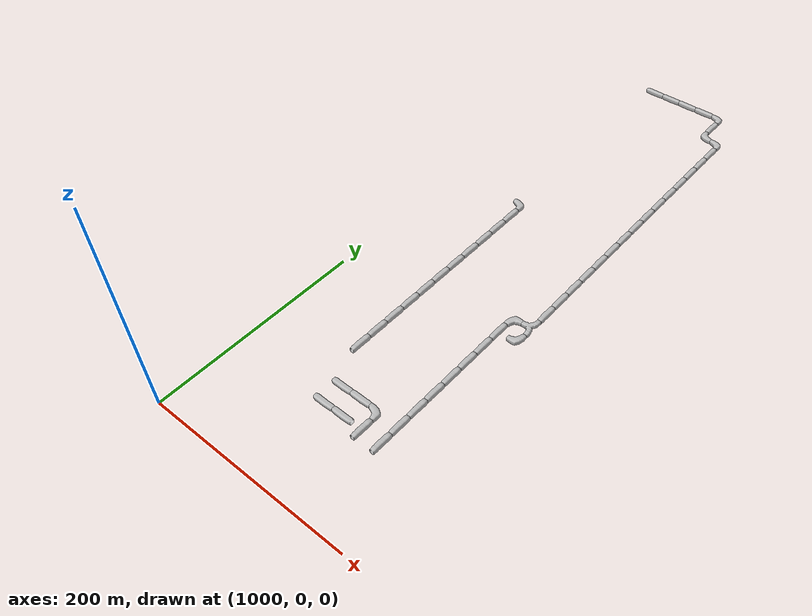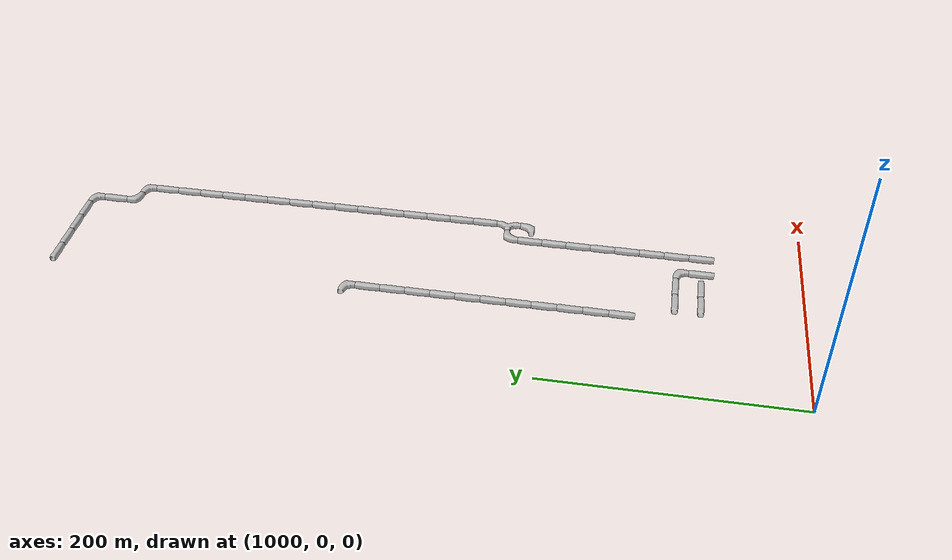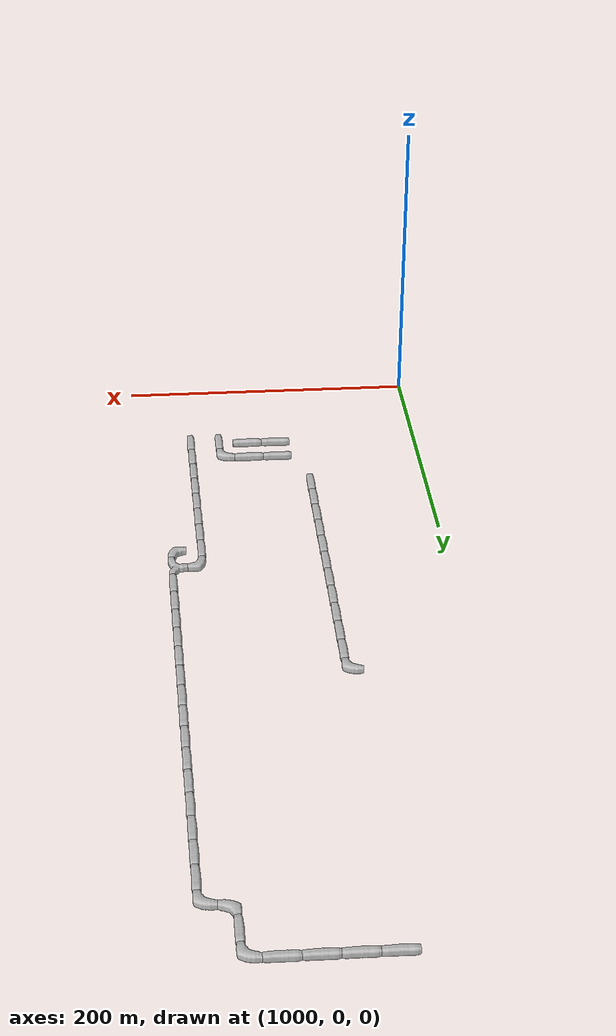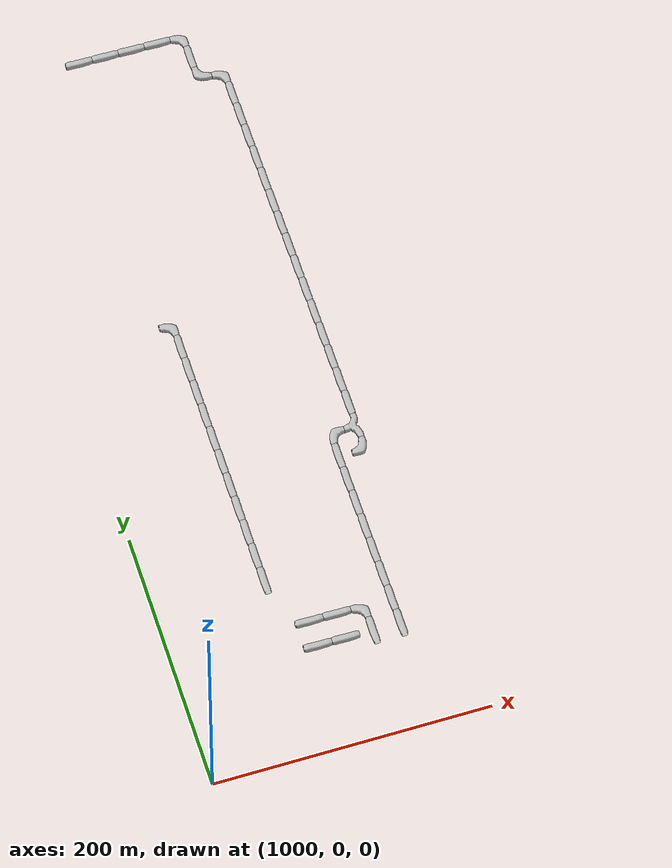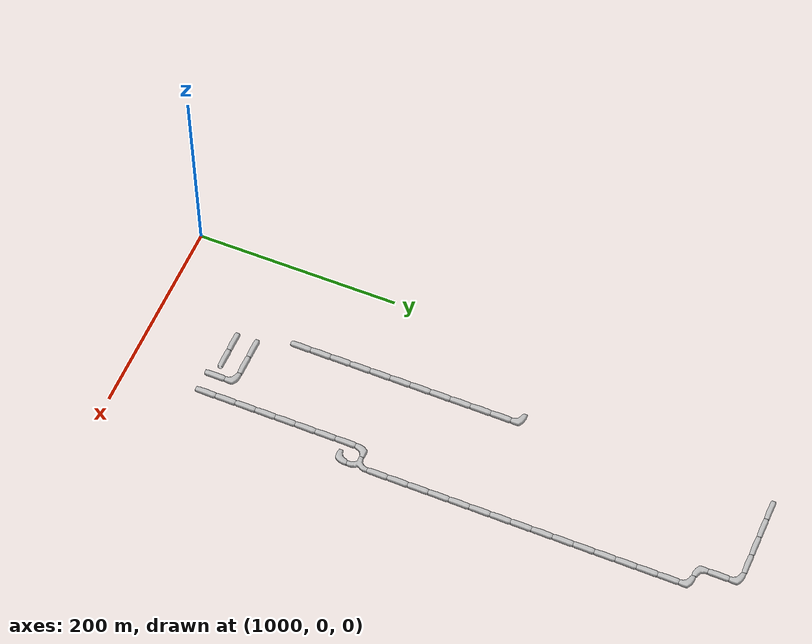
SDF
<sdf version="1.6">
 <world name="cave_16000_8">
  <include>
   <static>true</static>
   <name>cave_55_5</name>
   <pose>1100 100 0 0 0 1.5707963267948966</pose>
   <uri>model://cave_straight_20m</uri>
  </include>
  <include>
   <static>true</static>
   <name>cave_56_5</name>
   <pose>1120 100 0 0 0 1.5707963267948966</pose>
   <uri>model://cave_straight_20m</uri>
  </include>
  <include>
   <static>true</static>
   <name>cave_57_5</name>
   <pose>1140 100 0 0 0 3.141592653589793</pose>
   <uri>model://cave_L_20m</uri>
  </include>
  <include>
   <static>true</static>
   <name>cave_57_4</name>
   <pose>1140 80 0 0 0 0.0</pose>
   <uri>model://cave_straight_20m</uri>
  </include>
  <include>
   <static>true</static>
   <name>cave_58_4</name>
   <pose>1160 80 0 0 0 0.0</pose>
   <uri>model://cave_straight_20m</uri>
  </include>
  <include>
   <static>true</static>
   <name>cave_58_5</name>
   <pose>1160 100 0 0 0 0.0</pose>
   <uri>model://cave_straight_20m</uri>
  </include>
  <include>
   <static>true</static>
   <name>cave_58_6</name>
   <pose>1160 120 0 0 0 0.0</pose>
   <uri>model://cave_straight_20m</uri>
  </include>
  <include>
   <static>true</static>
   <name>cave_58_7</name>
   <pose>1160 140 0 0 0 0.0</pose>
   <uri>model://cave_straight_20m</uri>
  </include>
  <include>
   <static>true</static>
   <name>cave_58_8</name>
   <pose>1160 160 0 0 0 0.0</pose>
   <uri>model://cave_straight_20m</uri>
  </include>
  <include>
   <static>true</static>
   <name>cave_58_9</name>
   <pose>1160 180 0 0 0 0.0</pose>
   <uri>model://cave_straight_20m</uri>
  </include>
  <include>
   <static>true</static>
   <name>cave_58_10</name>
   <pose>1160 200 0 0 0 0.0</pose>
   <uri>model://cave_straight_20m</uri>
  </include>
  <include>
   <static>true</static>
   <name>cave_58_11</name>
   <pose>1160 220 0 0 0 0.0</pose>
   <uri>model://cave_straight_20m</uri>
  </include>
  <include>
   <static>true</static>
   <name>cave_58_12</name>
   <pose>1160 240 0 0 0 -1.5707963267948966</pose>
   <uri>model://cave_L_20m</uri>
  </include>
  <include>
   <static>true</static>
   <name>cave_59_12</name>
   <pose>1180 240 0 0 0 1.5707963267948966</pose>
   <uri>model://cave_3way_20m</uri>
  </include>
  <include>
   <static>true</static>
   <name>cave_59_11</name>
   <pose>1180 220 0 0 0 1.5707963267948966</pose>
   <uri>model://cave_L_20m</uri>
  </include>
  <include>
   <static>true</static>
   <name>cave_59_13</name>
   <pose>1180 260 0 0 0 0.0</pose>
   <uri>model://cave_straight_20m</uri>
  </include>
  <include>
   <static>true</static>
   <name>cave_59_14</name>
   <pose>1180 280 0 0 0 0.0</pose>
   <uri>model://cave_straight_20m</uri>
  </include>
  <include>
   <static>true</static>
   <name>cave_59_15</name>
   <pose>1180 300 0 0 0 0.0</pose>
   <uri>model://cave_straight_20m</uri>
  </include>
  <include>
   <static>true</static>
   <name>cave_59_16</name>
   <pose>1180 320 0 0 0 0.0</pose>
   <uri>model://cave_straight_20m</uri>
  </include>
  <include>
   <static>true</static>
   <name>cave_59_17</name>
   <pose>1180 340 0 0 0 0.0</pose>
   <uri>model://cave_straight_20m</uri>
  </include>
  <include>
   <static>true</static>
   <name>cave_59_18</name>
   <pose>1180 360 0 0 0 0.0</pose>
   <uri>model://cave_straight_20m</uri>
  </include>
  <include>
   <static>true</static>
   <name>cave_59_19</name>
   <pose>1180 380 0 0 0 0.0</pose>
   <uri>model://cave_straight_20m</uri>
  </include>
  <include>
   <static>true</static>
   <name>cave_59_20</name>
   <pose>1180 400 0 0 0 0.0</pose>
   <uri>model://cave_straight_20m</uri>
  </include>
  <include>
   <static>true</static>
   <name>cave_59_21</name>
   <pose>1180 420 0 0 0 0.0</pose>
   <uri>model://cave_straight_20m</uri>
  </include>
  <include>
   <static>true</static>
   <name>cave_59_22</name>
   <pose>1180 440 0 0 0 0.0</pose>
   <uri>model://cave_straight_20m</uri>
  </include>
  <include>
   <static>true</static>
   <name>cave_59_23</name>
   <pose>1180 460 0 0 0 0.0</pose>
   <uri>model://cave_straight_20m</uri>
  </include>
  <include>
   <static>true</static>
   <name>cave_59_24</name>
   <pose>1180 480 0 0 0 0.0</pose>
   <uri>model://cave_straight_20m</uri>
  </include>
  <include>
   <static>true</static>
   <name>cave_59_25</name>
   <pose>1180 500 0 0 0 0.0</pose>
   <uri>model://cave_straight_20m</uri>
  </include>
  <include>
   <static>true</static>
   <name>cave_59_26</name>
   <pose>1180 520 0 0 0 0.0</pose>
   <uri>model://cave_straight_20m</uri>
  </include>
  <include>
   <static>true</static>
   <name>cave_59_27</name>
   <pose>1180 540 0 0 0 0.0</pose>
   <uri>model://cave_straight_20m</uri>
  </include>
  <include>
   <static>true</static>
   <name>cave_59_28</name>
   <pose>1180 560 0 0 0 3.141592653589793</pose>
   <uri>model://cave_L_20m</uri>
  </include>
  <include>
   <static>true</static>
   <name>cave_58_28</name>
   <pose>1160 560 0 0 0 0.0</pose>
   <uri>model://cave_L_20m</uri>
  </include>
  <include>
   <static>true</static>
   <name>cave_58_29</name>
   <pose>1160 580 0 0 0 0.0</pose>
   <uri>model://cave_straight_20m</uri>
  </include>
  <include>
   <static>true</static>
   <name>cave_58_30</name>
   <pose>1160 600 0 0 0 3.141592653589793</pose>
   <uri>model://cave_L_20m</uri>
  </include>
  <include>
   <static>true</static>
   <name>cave_57_30</name>
   <pose>1140 600 0 0 0 1.5707963267948966</pose>
   <uri>model://cave_straight_20m</uri>
  </include>
  <include>
   <static>true</static>
   <name>cave_56_30</name>
   <pose>1120 600 0 0 0 1.5707963267948966</pose>
   <uri>model://cave_straight_20m</uri>
  </include>
  <include>
   <static>true</static>
   <name>cave_55_30</name>
   <pose>1100 600 0 0 0 1.5707963267948966</pose>
   <uri>model://cave_straight_20m</uri>
  </include>
  <include>
   <static>true</static>
   <name>cave_54_30</name>
   <pose>1080 600 0 0 0 1.5707963267948966</pose>
   <uri>model://cave_straight_20m</uri>
  </include>
  <include>
   <static>true</static>
   <name>cave_55_4</name>
   <pose>1100 80 0 0 0 1.5707963267948966</pose>
   <uri>model://cave_straight_20m</uri>
  </include>
  <include>
   <static>true</static>
   <name>cave_56_4</name>
   <pose>1120 80 0 0 0 1.5707963267948966</pose>
   <uri>model://cave_straight_20m</uri>
  </include>
  <include>
   <static>true</static>
   <name>cave_54_7</name>
   <pose>1080 140 0 0 0 0.0</pose>
   <uri>model://cave_straight_20m</uri>
  </include>
  <include>
   <static>true</static>
   <name>cave_54_8</name>
   <pose>1080 160 0 0 0 0.0</pose>
   <uri>model://cave_straight_20m</uri>
  </include>
  <include>
   <static>true</static>
   <name>cave_54_9</name>
   <pose>1080 180 0 0 0 0.0</pose>
   <uri>model://cave_straight_20m</uri>
  </include>
  <include>
   <static>true</static>
   <name>cave_54_10</name>
   <pose>1080 200 0 0 0 0.0</pose>
   <uri>model://cave_straight_20m</uri>
  </include>
  <include>
   <static>true</static>
   <name>cave_54_11</name>
   <pose>1080 220 0 0 0 0.0</pose>
   <uri>model://cave_straight_20m</uri>
  </include>
  <include>
   <static>true</static>
   <name>cave_54_12</name>
   <pose>1080 240 0 0 0 0.0</pose>
   <uri>model://cave_straight_20m</uri>
  </include>
  <include>
   <static>true</static>
   <name>cave_54_13</name>
   <pose>1080 260 0 0 0 0.0</pose>
   <uri>model://cave_straight_20m</uri>
  </include>
  <include>
   <static>true</static>
   <name>cave_54_14</name>
   <pose>1080 280 0 0 0 0.0</pose>
   <uri>model://cave_straight_20m</uri>
  </include>
  <include>
   <static>true</static>
   <name>cave_54_15</name>
   <pose>1080 300 0 0 0 0.0</pose>
   <uri>model://cave_straight_20m</uri>
  </include>
  <include>
   <static>true</static>
   <name>cave_54_16</name>
   <pose>1080 320 0 0 0 0.0</pose>
   <uri>model://cave_straight_20m</uri>
  </include>
  <include>
   <static>true</static>
   <name>cave_54_17</name>
   <pose>1080 340 0 0 0 0.0</pose>
   <uri>model://cave_straight_20m</uri>
  </include>
  <include>
   <static>true</static>
   <name>cave_54_18</name>
   <pose>1080 360 0 0 0 3.141592653589793</pose>
   <uri>model://cave_L_20m</uri>
  </include>
 </world>
</sdf>
